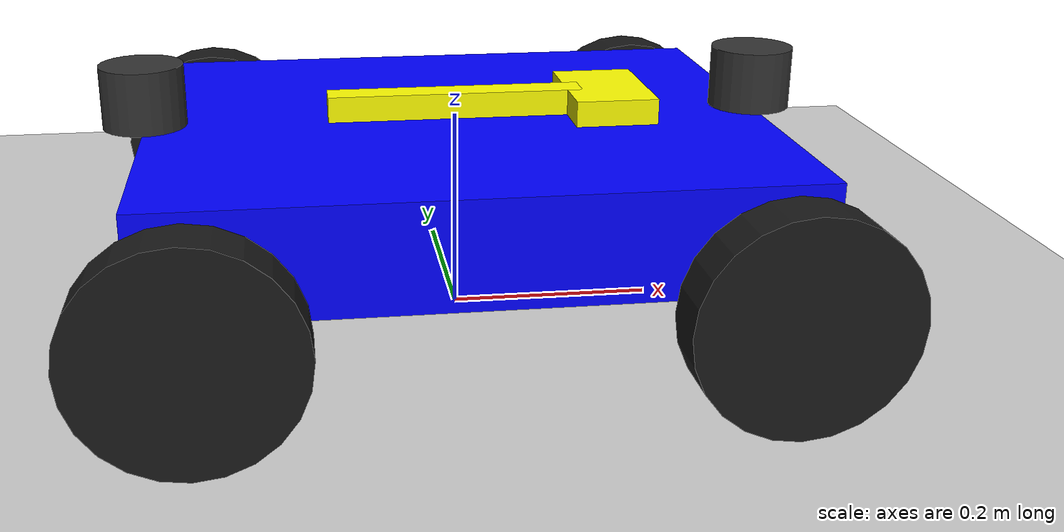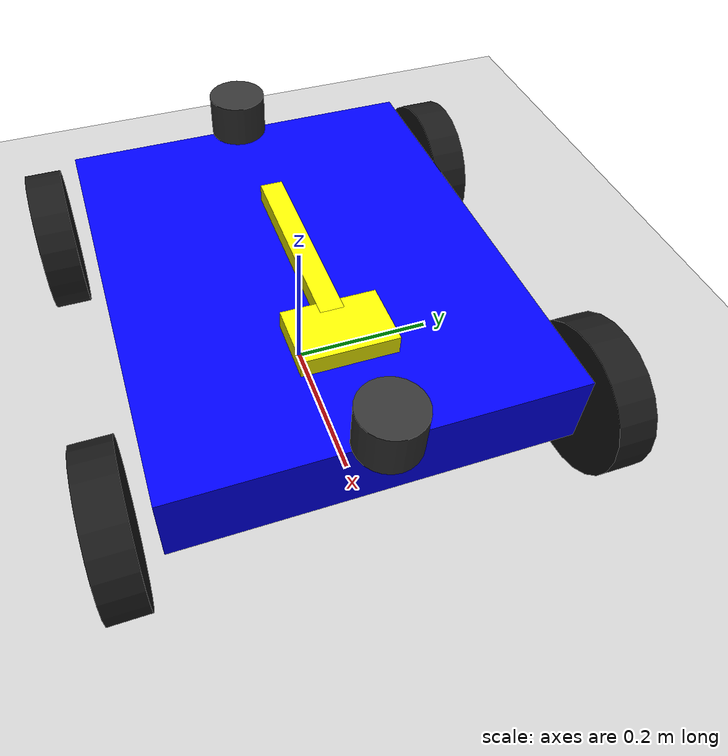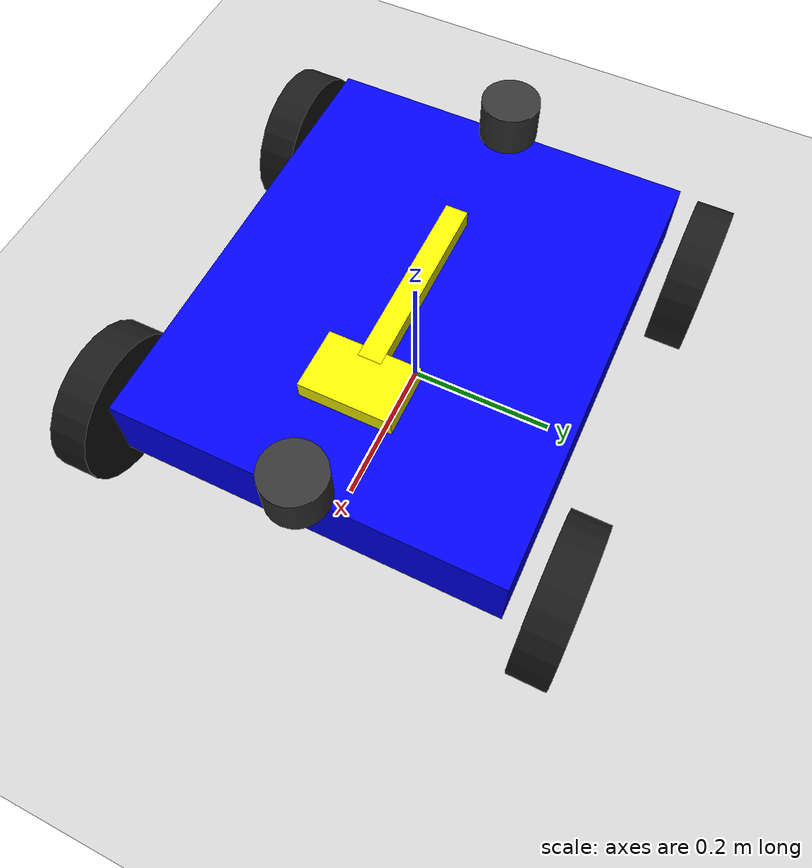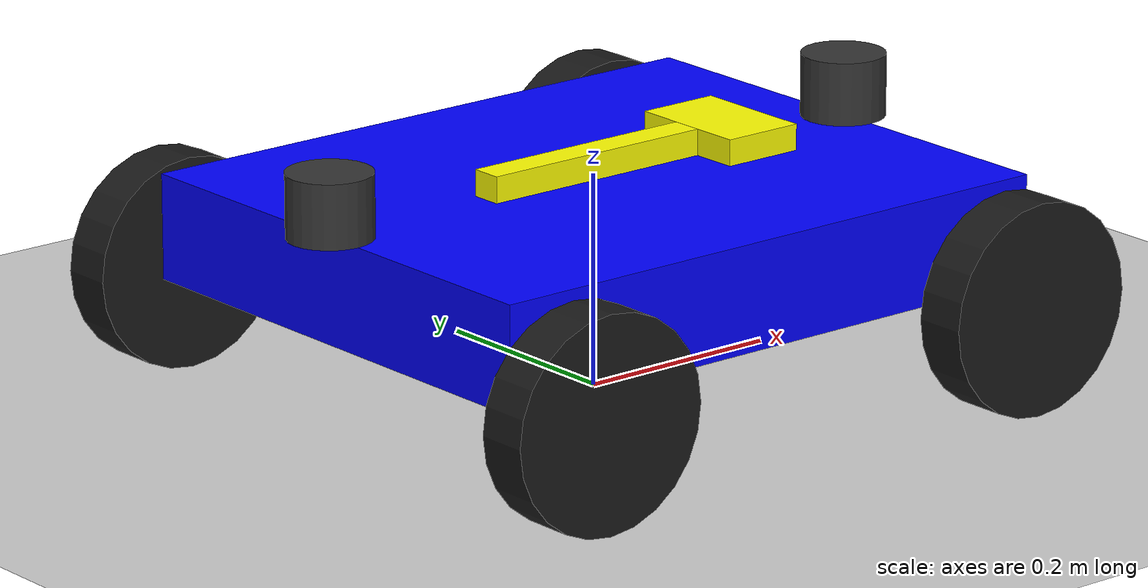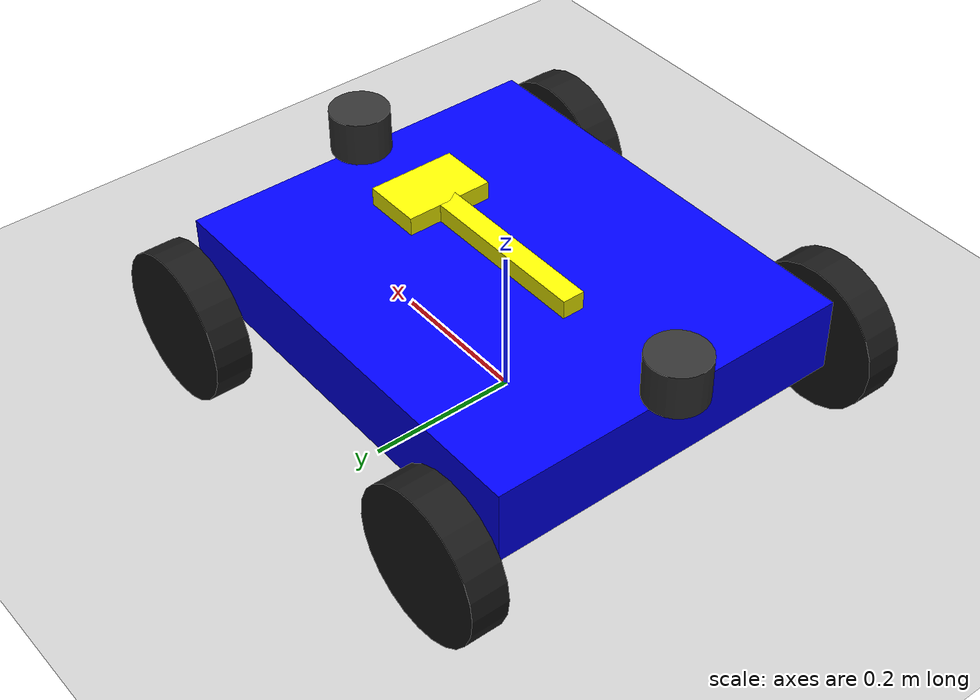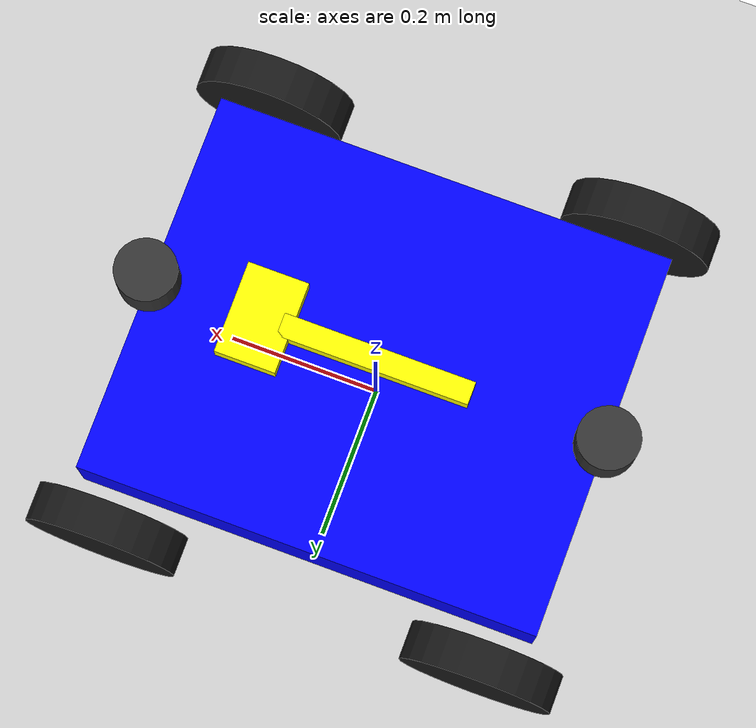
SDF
<?xml version="1.0" ?>
<sdf version="1.7">
    <world name="test_world">
        <include>
            <uri>
                https://fuel.gazebosim.org/1.0/OpenRobotics/models/Sun
            </uri>
        </include>
        <include>
            <uri>
                https://fuel.gazebosim.org/1.0/OpenRobotics/models/Ground Plane
            </uri>
        </include>
        <include>
            <uri>../models/simple_bot</uri>
        </include>
    </world>
</sdf>

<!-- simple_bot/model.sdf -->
<sdf version="1.7">
    <model name="square_bot">
        <pose>0 0 0 0 0 0</pose>

        <link name="chassis">
            <!-- Arrow shaft — centered at x=0, sitting on top of chassis -->
            <visual name="arrow_shaft">
                <pose>0 0 0.06 0 0 0</pose>
                <geometry>
                    <box>
                        <size>0.25 0.03 0.03</size>
                    </box>
                </geometry>
                <material>
                    <ambient>1 1 0 1</ambient>
                    <diffuse>1 1 0 1</diffuse>
                </material>
            </visual>

            <!-- Arrow head — just ahead of shaft center, pointing forward -->
            <visual name="arrow_head">
                <pose>0.15 0 0.06 0 0 0</pose>
                <geometry>
                    <box>
                        <size>0.08 0.12 0.03</size>
                    </box>
                </geometry>
                <material>
                    <ambient>1 1 0 1</ambient>
                    <diffuse>1 1 0 1</diffuse>
                </material>
            </visual>

            <pose relative_to='__model__'>0 0 0.15 0 0 0</pose>
            <inertial>
                <mass>1.5</mass>
                <inertia>
                    <ixx>0.1</ixx>
                    <iyy>0.1</iyy>
                    <izz>0.1</izz>
                </inertia>
            </inertial>

            <visual name="visual">
                <geometry>
                    <box>
                        <size>0.6 0.5 0.1</size>
                    </box>
                </geometry>
                <material>
                    <ambient>0 0 1 1</ambient>
                    <diffuse>0 0 1 1</diffuse>
                </material>
            </visual>

            <collision name="collision">
                <geometry>
                    <box>
                        <size>0.6 0.5 0.1</size>
                    </box>
                </geometry>
            </collision>

        </link>

        <!-- ========== FRONT LIDAR ========== -->
        <link name="front_lidar_link">
            <!-- Sits on top front edge of chassis -->
            <pose relative_to="chassis">0.3 0 0.08 0 0 0</pose>
            <inertial>
                <mass>0.1</mass>
                <inertia>
                    <ixx>0.001</ixx>
                    <iyy>0.001</iyy>
                    <izz>0.001</izz>
                </inertia>
            </inertial>
            <!-- Small cylinder to visualise the sensor unit -->
            <visual name="visual">
                <geometry>
                    <cylinder>
                        <radius>0.04</radius>
                        <length>0.06</length>
                    </cylinder>
                </geometry>
                <material>
                    <ambient>0.2 0.2 0.2 1</ambient>
                    <diffuse>0.2 0.2 0.2 1</diffuse>
                </material>
            </visual>
            <collision name="collision">
                <geometry>
                    <cylinder>
                        <radius>0.04</radius>
                        <length>0.06</length>
                    </cylinder>
                </geometry>
            </collision>

            <sensor name="front_lidar" type="gpu_lidar">
                <pose>0 0 0 0 0 0</pose>
                <topic>front_lidar/scan</topic>
                <update_rate>10</update_rate>
                <lidar>
                    <scan>
                        <horizontal>
                            <!-- 180 degree forward-facing sweep -->
                            <samples>360</samples>
                            <resolution>1</resolution>
                            <min_angle>-1.5707963</min_angle>
                            <max_angle>1.5707963</max_angle>
                        </horizontal>
                    </scan>
                    <range>
                        <min>0.1</min>
                        <max>10.0</max>
                        <resolution>0.01</resolution>
                    </range>
                    <noise>
                        <type>gaussian</type>
                        <mean>0.0</mean>
                        <stddev>0.01</stddev>
                    </noise>
                </lidar>
                <visualize>true</visualize>
            </sensor>
        </link>

        <!-- ========== BACK LIDAR ========== -->
        <link name="back_lidar_link">
            <!-- Sits on top back edge of chassis, rotated 180deg to face rearward -->
            <pose relative_to="chassis">-0.3 0 0.08 0 0 3.1415927</pose>
            <inertial>
                <mass>0.1</mass>
                <inertia>
                    <ixx>0.001</ixx>
                    <iyy>0.001</iyy>
                    <izz>0.001</izz>
                </inertia>
            </inertial>
            <visual name="visual">
                <geometry>
                    <cylinder>
                        <radius>0.04</radius>
                        <length>0.06</length>
                    </cylinder>
                </geometry>
                <material>
                    <ambient>0.2 0.2 0.2 1</ambient>
                    <diffuse>0.2 0.2 0.2 1</diffuse>
                </material>
            </visual>
            <collision name="collision">
                <geometry>
                    <cylinder>
                        <radius>0.04</radius>
                        <length>0.06</length>
                    </cylinder>
                </geometry>
            </collision>

            <sensor name="back_lidar" type="gpu_lidar">
                <pose>0 0 0 0 0 0</pose>
                <topic>back_lidar/scan</topic>
                <update_rate>10</update_rate>
                <lidar>
                    <scan>
                        <horizontal>
                            <!-- 180 degree rear-facing sweep -->
                            <samples>360</samples>
                            <resolution>1</resolution>
                            <min_angle>-1.5707963</min_angle>
                            <max_angle>1.5707963</max_angle>
                        </horizontal>
                    </scan>
                    <range>
                        <min>0.1</min>
                        <max>10.0</max>
                        <resolution>0.01</resolution>
                    </range>
                    <noise>
                        <type>gaussian</type>
                        <mean>0.0</mean>
                        <stddev>0.01</stddev>
                    </noise>
                </lidar>
                <visualize>true</visualize>
            </sensor>
        </link>

        <!-- Lidar joints (fixed to chassis) -->
        <joint name="front_lidar_joint" type="fixed">
            <parent>chassis</parent>
            <child>front_lidar_link</child>
        </joint>

        <joint name="back_lidar_joint" type="fixed">
            <parent>chassis</parent>
            <child>back_lidar_link</child>
        </joint>

        <!-- ========== WHEELS (unchanged) ========== -->
        <link name="front_left_wheel">
            <pose relative_to="chassis">0.25 0.3 -0.05 0 0 0</pose>
            <inertial>
                <mass>0.3</mass>
                <inertia>
                    <ixx>0.01</ixx>
                    <iyy>0.01</iyy>
                    <izz>0.02</izz>
                </inertia>
            </inertial>
            <visual name="visual">
                <pose>0 0 0 1.5707963 0 0</pose>
                <geometry>
                    <cylinder>
                        <radius>0.1</radius>
                        <length>0.05</length>
                    </cylinder>
                </geometry>
                <material>
                    <ambient>0.1 0.1 0.1 1</ambient>
                    <diffuse>0.1 0.1 0.1 1</diffuse>
                </material>
            </visual>
            <collision name="collision">
                <pose>0 0 0 1.5707963 0 0</pose>
                <geometry>
                    <cylinder>
                        <radius>0.1</radius>
                        <length>0.05</length>
                    </cylinder>
                </geometry>
                <surface>
                    <friction>
                        <ode>
                            <mu>1.0</mu>
                            <mu2>1.0</mu2>
                        </ode>
                    </friction>
                </surface>
            </collision>
        </link>

        <link name="front_right_wheel">
            <pose relative_to="chassis">0.25 -0.3 -0.05 0 0 0</pose>
            <inertial>
                <mass>0.3</mass>
                <inertia>
                    <ixx>0.01</ixx>
                    <iyy>0.01</iyy>
                    <izz>0.02</izz>
                </inertia>
            </inertial>
            <visual name="visual">
                <pose>0 0 0 1.5707963 0 0</pose>
                <geometry>
                    <cylinder>
                        <radius>0.1</radius>
                        <length>0.05</length>
                    </cylinder>
                </geometry>
                <material>
                    <ambient>0.1 0.1 0.1 1</ambient>
                    <diffuse>0.1 0.1 0.1 1</diffuse>
                </material>
            </visual>
            <collision name="collision">
                <pose>0 0 0 1.5707963 0 0</pose>
                <geometry>
                    <cylinder>
                        <radius>0.1</radius>
                        <length>0.05</length>
                    </cylinder>
                </geometry>
                <surface>
                    <friction>
                        <ode>
                            <mu>1.0</mu>
                            <mu2>1.0</mu2>
                        </ode>
                    </friction>
                </surface>
            </collision>
        </link>

        <link name="rear_left_wheel">
            <pose relative_to="chassis">-0.25 0.3 -0.05 0 0 0</pose>
            <inertial>
                <mass>0.3</mass>
                <inertia>
                    <ixx>0.01</ixx>
                    <iyy>0.01</iyy>
                    <izz>0.02</izz>
                </inertia>
            </inertial>
            <visual name="visual">
                <pose>0 0 0 1.5707963 0 0</pose>
                <geometry>
                    <cylinder>
                        <radius>0.1</radius>
                        <length>0.05</length>
                    </cylinder>
                </geometry>
                <material>
                    <ambient>0.1 0.1 0.1 1</ambient>
                    <diffuse>0.1 0.1 0.1 1</diffuse>
                </material>
            </visual>
            <collision name="collision">
                <pose>0 0 0 1.5707963 0 0</pose>
                <geometry>
                    <cylinder>
                        <radius>0.1</radius>
                        <length>0.05</length>
                    </cylinder>
                </geometry>
                <surface>
                    <friction>
                        <ode>
                            <mu>1.0</mu>
                            <mu2>1.0</mu2>
                        </ode>
                    </friction>
                </surface>
            </collision>
        </link>

        <link name="rear_right_wheel">
            <pose relative_to="chassis">-0.25 -0.3 -0.05 0 0 0</pose>
            <inertial>
                <mass>0.3</mass>
                <inertia>
                    <ixx>0.01</ixx>
                    <iyy>0.01</iyy>
                    <izz>0.02</izz>
                </inertia>
            </inertial>
            <visual name="visual">
                <pose>0 0 0 1.5707963 0 0</pose>
                <geometry>
                    <cylinder>
                        <radius>0.1</radius>
                        <length>0.05</length>
                    </cylinder>
                </geometry>
                <material>
                    <ambient>0.1 0.1 0.1 1</ambient>
                    <diffuse>0.1 0.1 0.1 1</diffuse>
                </material>
            </visual>
            <collision name="collision">
                <pose>0 0 0 1.5707963 0 0</pose>
                <geometry>
                    <cylinder>
                        <radius>0.1</radius>
                        <length>0.05</length>
                    </cylinder>
                </geometry>
                <surface>
                    <friction>
                        <ode>
                            <mu>1.0</mu>
                            <mu2>1.0</mu2>
                        </ode>
                    </friction>
                </surface>
            </collision>
        </link>

        <joint name="front_left_joint" type="revolute">
            <parent>chassis</parent>
            <child>front_left_wheel</child>
            <axis>
                <xyz expressed_in="__model__">0 1 0</xyz>
            </axis>
        </joint>

        <joint name="front_right_joint" type="revolute">
            <parent>chassis</parent>
            <child>front_right_wheel</child>
            <axis>
                <xyz expressed_in="__model__">0 1 0</xyz>
            </axis>
        </joint>

        <joint name="rear_left_joint" type="revolute">
            <parent>chassis</parent>
            <child>rear_left_wheel</child>
            <axis>
                <xyz expressed_in="__model__">0 1 0</xyz>
            </axis>
        </joint>

        <joint name="rear_right_joint" type="revolute">
            <parent>chassis</parent>
            <child>rear_right_wheel</child>
            <axis>
                <xyz expressed_in="__model__">0 1 0</xyz>
            </axis>
        </joint>

        <!-- PLUGINS -->
        <plugin filename="libignition-gazebo-diff-drive-system.so"
                name="ignition::gazebo::systems::DiffDrive">
            <left_joint>front_left_joint</left_joint>
            <right_joint>front_right_joint</right_joint>
            <wheel_separation>0.6</wheel_separation>
            <wheel_radius>0.1</wheel_radius>
            <odom_publish_frequency>50</odom_publish_frequency>
            <topic>cmd_vel</topic>
        </plugin>

        <!-- Required for lidar sensors to work -->
        <plugin filename="libignition-gazebo-sensors-system.so"
                name="ignition::gazebo::systems::Sensors">
            <render_engine>ogre2</render_engine>
        </plugin>

    </model>
</sdf>
